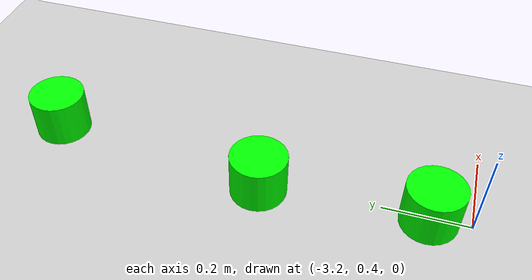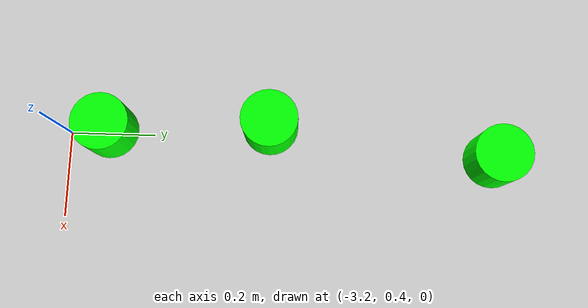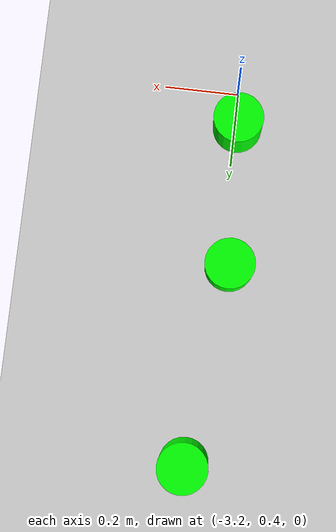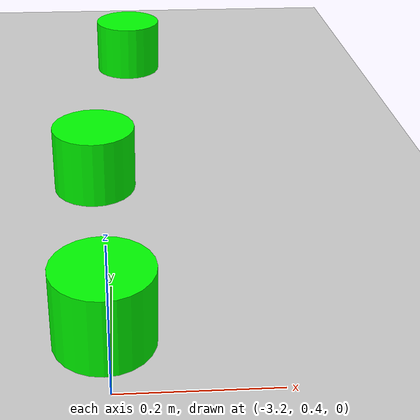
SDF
<sdf version="1.7">
 <world name="default">
  <model name="ground_plane">
   <static>1</static>
   <link name="link">
    <collision name="collision">
     <geometry><plane><normal>0 0 1</normal><size>100 100</size></plane></geometry>
     <surface>
      <contact><collide_bitmask>65535</collide_bitmask></contact>
      <friction><ode><mu>100</mu><mu2>50</mu2></ode></friction>
     </surface>
    </collision>
    <visual name="visual">
     <cast_shadows>0</cast_shadows>
     <geometry><plane><normal>0 0 1</normal><size>100 100</size></plane></geometry>
     <material>
      <script><uri>file://media/materials/scripts/gazebo.material</uri><name>Gazebo/Grey</name></script>
     </material>
    </visual>
   </link>
  </model>
  <model name="latinha_verde_clone_8_clone_2_clone_2_clone_26">
   <link name="link">
    <inertial>
     <mass>1</mass>
     <inertia><ixx>0.145833</ixx><ixy>0</ixy><ixz>0</ixz><iyy>0.145833</iyy><iyz>0</iyz><izz>0.125</izz></inertia>
    </inertial>
    <visual name="visual">
     <geometry><cylinder><radius>0.066</radius><length>0.114</length></cylinder></geometry>
     <material>
      <script><name>Gazebo/Gray</name><uri>file://media/materials/scripts/gazebo.material</uri></script>
      <shader type="pixel"><normal_map>__default__</normal_map></shader>
      <ambient>0 1 0 1</ambient>
      <diffuse>0 1 0 1</diffuse>
      <specular>0.1 0.1 0.1 1</specular>
      <emissive>0 0 0 1</emissive>
     </material>
    </visual>
    <collision name="collision">
     <geometry><cylinder><radius>0.05</radius><length>0.1</length></cylinder></geometry>
     <surface>
      <friction>
       <ode><mu>1</mu><mu2>1</mu2><fdir1>0 0 0</fdir1><slip1>0</slip1><slip2>0</slip2></ode>
       <torsional>
        <coefficient>1</coefficient>
        <patch_radius>0</patch_radius>
        <surface_radius>0</surface_radius>
        <use_patch_radius>1</use_patch_radius>
        <ode><slip>0</slip></ode>
       </torsional>
      </friction>
      <bounce><restitution_coefficient>0</restitution_coefficient><threshold>1e+06</threshold></bounce>
      <contact>
       <collide_without_contact>0</collide_without_contact>
       <collide_without_contact_bitmask>1</collide_without_contact_bitmask>
       <collide_bitmask>1</collide_bitmask>
       <ode>
        <soft_cfm>0</soft_cfm>
        <soft_erp>0.2</soft_erp>
        <kp>1e+13</kp>
        <kd>1</kd>
        <max_vel>0.01</max_vel>
        <min_depth>0</min_depth>
       </ode>
       <bullet>
        <split_impulse>1</split_impulse>
        <split_impulse_penetration_threshold>-0.01</split_impulse_penetration_threshold>
        <soft_cfm>0</soft_cfm>
        <soft_erp>0.2</soft_erp>
        <kp>1e+13</kp>
        <kd>1</kd>
       </bullet>
      </contact>
     </surface>
    </collision>
   </link>
   <static>0</static>
   <pose>-3.22628 0.877357 0.05 0 -0 0.000118</pose>
  </model>
  <model name="latinha_verde_clone_8_clone_2_clone_2_clone_33">
   <link name="link">
    <inertial>
     <mass>1</mass>
     <inertia><ixx>0.145833</ixx><ixy>0</ixy><ixz>0</ixz><iyy>0.145833</iyy><iyz>0</iyz><izz>0.125</izz></inertia>
    </inertial>
    <visual name="visual">
     <geometry><cylinder><radius>0.066</radius><length>0.114</length></cylinder></geometry>
     <material>
      <script><name>Gazebo/Gray</name><uri>file://media/materials/scripts/gazebo.material</uri></script>
      <shader type="pixel"><normal_map>__default__</normal_map></shader>
      <ambient>0 1 0 1</ambient>
      <diffuse>0 1 0 1</diffuse>
      <specular>0.1 0.1 0.1 1</specular>
      <emissive>0 0 0 1</emissive>
     </material>
    </visual>
    <collision name="collision">
     <geometry><cylinder><radius>0.05</radius><length>0.1</length></cylinder></geometry>
     <surface>
      <friction>
       <ode><mu>1</mu><mu2>1</mu2><fdir1>0 0 0</fdir1><slip1>0</slip1><slip2>0</slip2></ode>
       <torsional>
        <coefficient>1</coefficient>
        <patch_radius>0</patch_radius>
        <surface_radius>0</surface_radius>
        <use_patch_radius>1</use_patch_radius>
        <ode><slip>0</slip></ode>
       </torsional>
      </friction>
      <bounce><restitution_coefficient>0</restitution_coefficient><threshold>1e+06</threshold></bounce>
      <contact>
       <collide_without_contact>0</collide_without_contact>
       <collide_without_contact_bitmask>1</collide_without_contact_bitmask>
       <collide_bitmask>1</collide_bitmask>
       <ode>
        <soft_cfm>0</soft_cfm>
        <soft_erp>0.2</soft_erp>
        <kp>1e+13</kp>
        <kd>1</kd>
        <max_vel>0.01</max_vel>
        <min_depth>0</min_depth>
       </ode>
       <bullet>
        <split_impulse>1</split_impulse>
        <split_impulse_penetration_threshold>-0.01</split_impulse_penetration_threshold>
        <soft_cfm>0</soft_cfm>
        <soft_erp>0.2</soft_erp>
        <kp>1e+13</kp>
        <kd>1</kd>
       </bullet>
      </contact>
     </surface>
    </collision>
   </link>
   <static>0</static>
   <pose>-3.20803 0.494786 0.05 0 -0 0.000118</pose>
  </model>
  <model name="latinha_verde_clone_8_clone_2_clone_2_clone_34">
   <link name="link">
    <inertial>
     <mass>1</mass>
     <inertia><ixx>0.145833</ixx><ixy>0</ixy><ixz>0</ixz><iyy>0.145833</iyy><iyz>0</iyz><izz>0.125</izz></inertia>
    </inertial>
    <visual name="visual">
     <geometry><cylinder><radius>0.066</radius><length>0.114</length></cylinder></geometry>
     <material>
      <script><name>Gazebo/Gray</name><uri>file://media/materials/scripts/gazebo.material</uri></script>
      <shader type="pixel"><normal_map>__default__</normal_map></shader>
      <ambient>0 1 0 1</ambient>
      <diffuse>0 1 0 1</diffuse>
      <specular>0.1 0.1 0.1 1</specular>
      <emissive>0 0 0 1</emissive>
     </material>
    </visual>
    <collision name="collision">
     <geometry><cylinder><radius>0.05</radius><length>0.1</length></cylinder></geometry>
     <surface>
      <friction>
       <ode><mu>1</mu><mu2>1</mu2><fdir1>0 0 0</fdir1><slip1>0</slip1><slip2>0</slip2></ode>
       <torsional>
        <coefficient>1</coefficient>
        <patch_radius>0</patch_radius>
        <surface_radius>0</surface_radius>
        <use_patch_radius>1</use_patch_radius>
        <ode><slip>0</slip></ode>
       </torsional>
      </friction>
      <bounce><restitution_coefficient>0</restitution_coefficient><threshold>1e+06</threshold></bounce>
      <contact>
       <collide_without_contact>0</collide_without_contact>
       <collide_without_contact_bitmask>1</collide_without_contact_bitmask>
       <collide_bitmask>1</collide_bitmask>
       <ode>
        <soft_cfm>0</soft_cfm>
        <soft_erp>0.2</soft_erp>
        <kp>1e+13</kp>
        <kd>1</kd>
        <max_vel>0.01</max_vel>
        <min_depth>0</min_depth>
       </ode>
       <bullet>
        <split_impulse>1</split_impulse>
        <split_impulse_penetration_threshold>-0.01</split_impulse_penetration_threshold>
        <soft_cfm>0</soft_cfm>
        <soft_erp>0.2</soft_erp>
        <kp>1e+13</kp>
        <kd>1</kd>
       </bullet>
      </contact>
     </surface>
    </collision>
   </link>
   <static>0</static>
   <pose>-3.16186 1.40526 0.05 0 -0 0.000118</pose>
  </model>
 </world>
</sdf>
